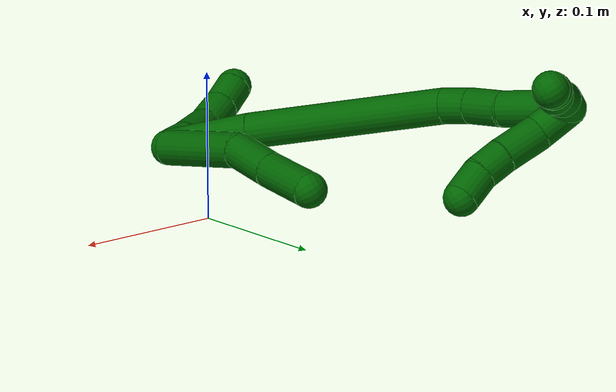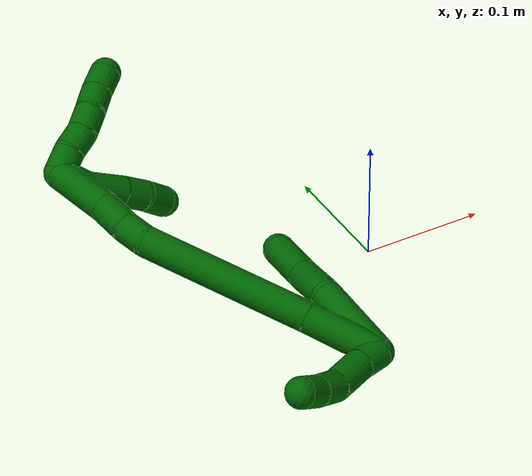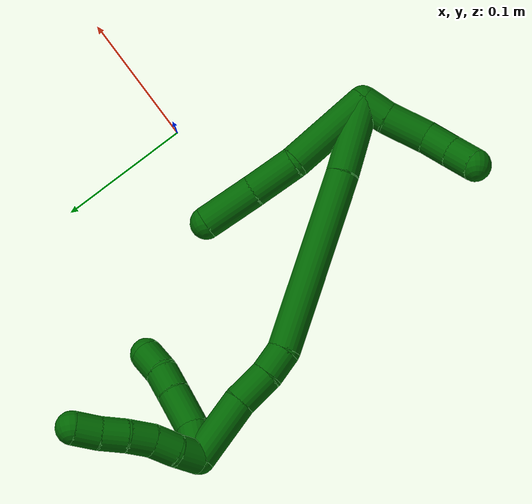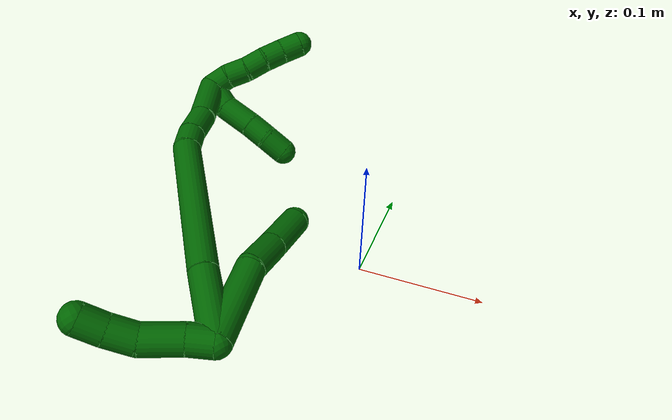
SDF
<sdf version="1.7">
 <world name="default">
  <model name="6">
   <static>0</static>
   <link name="6">
    <collision name="collision-cylinder-e_1_2_8">
     <pose>0.012918 0.02512 0.020527 -0.885689 0.378961 -0.181409</pose>
     <geometry><cylinder><radius>0.0125</radius><length>0.069836</length></cylinder></geometry>
     <surface>
      <friction><ode><mu>1.16</mu><mu2>1.16</mu2><slip1>0</slip1><slip2>0</slip2></ode></friction>
      <contact><ode><kp>1e+06</kp><kd>1</kd><max_vel>0</max_vel><min_depth>0.001</min_depth></ode></contact>
     </surface>
    </collision>
    <visual name="visual-cylinder-e_1_2_8">
     <pose>0.012918 0.02512 0.020527 -0.885689 0.378961 -0.181409</pose>
     <geometry><cylinder><radius>0.0125</radius><length>0.069836</length></cylinder></geometry>
     <material><ambient>0 0.392157 0.003922 1</ambient></material>
    </visual>
    <collision name="collision-cylinder-e_2_8_9">
     <pose>0.030135 0.067139 0.047262 -1.21872 0.234377 -0.163971</pose>
     <geometry><cylinder><radius>0.0125</radius><length>0.037018</length></cylinder></geometry>
     <surface>
      <friction><ode><mu>1.16</mu><mu2>1.16</mu2><slip1>0</slip1><slip2>0</slip2></ode></friction>
      <contact><ode><kp>1e+06</kp><kd>1</kd><max_vel>0</max_vel><min_depth>0.001</min_depth></ode></contact>
     </surface>
    </collision>
    <visual name="visual-cylinder-e_2_8_9">
     <pose>0.030135 0.067139 0.047262 -1.21872 0.234377 -0.163971</pose>
     <geometry><cylinder><radius>0.0125</radius><length>0.037018</length></cylinder></geometry>
     <material><ambient>0 0.392157 0.003922 1</ambient></material>
    </visual>
    <collision name="collision-cylinder-e_3_9_6">
     <pose>0.040599 0.103178 0.061283 -1.18325 0.289844 -0.195501</pose>
     <geometry><cylinder><radius>0.0125</radius><length>0.043146</length></cylinder></geometry>
     <surface>
      <friction><ode><mu>1.16</mu><mu2>1.16</mu2><slip1>0</slip1><slip2>0</slip2></ode></friction>
      <contact><ode><kp>1e+06</kp><kd>1</kd><max_vel>0</max_vel><min_depth>0.001</min_depth></ode></contact>
     </surface>
    </collision>
    <visual name="visual-cylinder-e_3_9_6">
     <pose>0.040599 0.103178 0.061283 -1.18325 0.289844 -0.195501</pose>
     <geometry><cylinder><radius>0.0125</radius><length>0.043146</length></cylinder></geometry>
     <material><ambient>0 0.392157 0.003922 1</ambient></material>
    </visual>
    <collision name="collision-cylinder-e_1_2_10">
     <pose>-0.007254 -0.00468 0.006209 0.645883 -0.750718 -0.262224</pose>
     <geometry><cylinder><radius>0.0125</radius><length>0.021268</length></cylinder></geometry>
     <surface>
      <friction><ode><mu>1.16</mu><mu2>1.16</mu2><slip1>0</slip1><slip2>0</slip2></ode></friction>
      <contact><ode><kp>1e+06</kp><kd>1</kd><max_vel>0</max_vel><min_depth>0.001</min_depth></ode></contact>
     </surface>
    </collision>
    <visual name="visual-cylinder-e_1_2_10">
     <pose>-0.007254 -0.00468 0.006209 0.645883 -0.750718 -0.262224</pose>
     <geometry><cylinder><radius>0.0125</radius><length>0.021268</length></cylinder></geometry>
     <material><ambient>0 0.392157 0.003922 1</ambient></material>
    </visual>
    <collision name="collision-cylinder-e_2_10_11">
     <pose>-0.026204 -0.018451 0.020609 0.837483 -0.762829 -0.353269</pose>
     <geometry><cylinder><radius>0.0125</radius><length>0.033853</length></cylinder></geometry>
     <surface>
      <friction><ode><mu>1.16</mu><mu2>1.16</mu2><slip1>0</slip1><slip2>0</slip2></ode></friction>
      <contact><ode><kp>1e+06</kp><kd>1</kd><max_vel>0</max_vel><min_depth>0.001</min_depth></ode></contact>
     </surface>
    </collision>
    <visual name="visual-cylinder-e_2_10_11">
     <pose>-0.026204 -0.018451 0.020609 0.837483 -0.762829 -0.353269</pose>
     <geometry><cylinder><radius>0.0125</radius><length>0.033853</length></cylinder></geometry>
     <material><ambient>0 0.392157 0.003922 1</ambient></material>
    </visual>
    <collision name="collision-cylinder-e_3_11_12">
     <pose>-0.042847 -0.034619 0.036751 0.727221 -0.43504 -0.167812</pose>
     <geometry><cylinder><radius>0.0125</radius><length>0.023478</length></cylinder></geometry>
     <surface>
      <friction><ode><mu>1.16</mu><mu2>1.16</mu2><slip1>0</slip1><slip2>0</slip2></ode></friction>
      <contact><ode><kp>1e+06</kp><kd>1</kd><max_vel>0</max_vel><min_depth>0.001</min_depth></ode></contact>
     </surface>
    </collision>
    <visual name="visual-cylinder-e_3_11_12">
     <pose>-0.042847 -0.034619 0.036751 0.727221 -0.43504 -0.167812</pose>
     <geometry><cylinder><radius>0.0125</radius><length>0.023478</length></cylinder></geometry>
     <material><ambient>0 0.392157 0.003922 1</ambient></material>
    </visual>
    <collision name="collision-cylinder-e_4_12_5">
     <pose>-0.05108 -0.048532 0.052252 0.735907 -0.31212 -0.121164</pose>
     <geometry><cylinder><radius>0.0125</radius><length>0.021401</length></cylinder></geometry>
     <surface>
      <friction><ode><mu>1.16</mu><mu2>1.16</mu2><slip1>0</slip1><slip2>0</slip2></ode></friction>
      <contact><ode><kp>1e+06</kp><kd>1</kd><max_vel>0</max_vel><min_depth>0.001</min_depth></ode></contact>
     </surface>
    </collision>
    <visual name="visual-cylinder-e_4_12_5">
     <pose>-0.05108 -0.048532 0.052252 0.735907 -0.31212 -0.121164</pose>
     <geometry><cylinder><radius>0.0125</radius><length>0.021401</length></cylinder></geometry>
     <material><ambient>0 0.392157 0.003922 1</ambient></material>
    </visual>
    <collision name="collision-cylinder-e_1_2_13">
     <pose>0.001254 0.012436 0.027146 -0.429575 0.041956 -0.009154</pose>
     <geometry><cylinder><radius>0.0125</radius><length>0.059771</length></cylinder></geometry>
     <surface>
      <friction><ode><mu>1.16</mu><mu2>1.16</mu2><slip1>0</slip1><slip2>0</slip2></ode></friction>
      <contact><ode><kp>1e+06</kp><kd>1</kd><max_vel>0</max_vel><min_depth>0.001</min_depth></ode></contact>
     </surface>
    </collision>
    <visual name="visual-cylinder-e_1_2_13">
     <pose>0.001254 0.012436 0.027146 -0.429575 0.041956 -0.009154</pose>
     <geometry><cylinder><radius>0.0125</radius><length>0.059771</length></cylinder></geometry>
     <material><ambient>0 0.392157 0.003922 1</ambient></material>
    </visual>
    <collision name="collision-cylinder-e_2_13_14">
     <pose>0.004304 0.058716 0.115683 -0.503833 0.025633 -0.006598</pose>
     <geometry><cylinder><radius>0.0125</radius><length>0.140249</length></cylinder></geometry>
     <surface>
      <friction><ode><mu>1.16</mu><mu2>1.16</mu2><slip1>0</slip1><slip2>0</slip2></ode></friction>
      <contact><ode><kp>1e+06</kp><kd>1</kd><max_vel>0</max_vel><min_depth>0.001</min_depth></ode></contact>
     </surface>
    </collision>
    <visual name="visual-cylinder-e_2_13_14">
     <pose>0.004304 0.058716 0.115683 -0.503833 0.025633 -0.006598</pose>
     <geometry><cylinder><radius>0.0125</radius><length>0.140249</length></cylinder></geometry>
     <material><ambient>0 0.392157 0.003922 1</ambient></material>
    </visual>
    <collision name="collision-cylinder-e_3_14_15">
     <pose>0.008265 0.09964 0.184781 -0.743013 0.203877 -0.079664</pose>
     <geometry><cylinder><radius>0.0125</radius><length>0.021373</length></cylinder></geometry>
     <surface>
      <friction><ode><mu>1.16</mu><mu2>1.16</mu2><slip1>0</slip1><slip2>0</slip2></ode></friction>
      <contact><ode><kp>1e+06</kp><kd>1</kd><max_vel>0</max_vel><min_depth>0.001</min_depth></ode></contact>
     </surface>
    </collision>
    <visual name="visual-cylinder-e_3_14_15">
     <pose>0.008265 0.09964 0.184781 -0.743013 0.203877 -0.079664</pose>
     <geometry><cylinder><radius>0.0125</radius><length>0.021373</length></cylinder></geometry>
     <material><ambient>0 0.392157 0.003922 1</ambient></material>
    </visual>
    <collision name="collision-cylinder-e_4_15_16">
     <pose>0.014538 0.117305 0.200931 -0.89752 0.29465 -0.142675</pose>
     <geometry><cylinder><radius>0.0125</radius><length>0.028301</length></cylinder></geometry>
     <surface>
      <friction><ode><mu>1.16</mu><mu2>1.16</mu2><slip1>0</slip1><slip2>0</slip2></ode></friction>
      <contact><ode><kp>1e+06</kp><kd>1</kd><max_vel>0</max_vel><min_depth>0.001</min_depth></ode></contact>
     </surface>
    </collision>
    <visual name="visual-cylinder-e_4_15_16">
     <pose>0.014538 0.117305 0.200931 -0.89752 0.29465 -0.142675</pose>
     <geometry><cylinder><radius>0.0125</radius><length>0.028301</length></cylinder></geometry>
     <material><ambient>0 0.392157 0.003922 1</ambient></material>
    </visual>
    <collision name="collision-cylinder-e_5_16_1">
     <pose>0.024079 0.144504 0.227462 -0.742928 0.217643 -0.085068</pose>
     <geometry><cylinder><radius>0.0125</radius><length>0.050306</length></cylinder></geometry>
     <surface>
      <friction><ode><mu>1.16</mu><mu2>1.16</mu2><slip1>0</slip1><slip2>0</slip2></ode></friction>
      <contact><ode><kp>1e+06</kp><kd>1</kd><max_vel>0</max_vel><min_depth>0.001</min_depth></ode></contact>
     </surface>
    </collision>
    <visual name="visual-cylinder-e_5_16_1">
     <pose>0.024079 0.144504 0.227462 -0.742928 0.217643 -0.085068</pose>
     <geometry><cylinder><radius>0.0125</radius><length>0.050306</length></cylinder></geometry>
     <material><ambient>0 0.392157 0.003922 1</ambient></material>
    </visual>
    <collision name="collision-cylinder-e_1_1_17">
     <pose>0.029365 0.163138 0.232689 -2.9858 -0.011122 0.142259</pose>
     <geometry><cylinder><radius>0.0125</radius><length>0.026038</length></cylinder></geometry>
     <surface>
      <friction><ode><mu>1.16</mu><mu2>1.16</mu2><slip1>0</slip1><slip2>0</slip2></ode></friction>
      <contact><ode><kp>1e+06</kp><kd>1</kd><max_vel>0</max_vel><min_depth>0.001</min_depth></ode></contact>
     </surface>
    </collision>
    <visual name="visual-cylinder-e_1_1_17">
     <pose>0.029365 0.163138 0.232689 -2.9858 -0.011122 0.142259</pose>
     <geometry><cylinder><radius>0.0125</radius><length>0.026038</length></cylinder></geometry>
     <material><ambient>0 0.392157 0.003922 1</ambient></material>
    </visual>
    <collision name="collision-cylinder-e_2_17_18">
     <pose>0.033992 0.169021 0.205239 -2.88274 0.306216 -1.74028</pose>
     <geometry><cylinder><radius>0.0125</radius><length>0.031658</length></cylinder></geometry>
     <surface>
      <friction><ode><mu>1.16</mu><mu2>1.16</mu2><slip1>0</slip1><slip2>0</slip2></ode></friction>
      <contact><ode><kp>1e+06</kp><kd>1</kd><max_vel>0</max_vel><min_depth>0.001</min_depth></ode></contact>
     </surface>
    </collision>
    <visual name="visual-cylinder-e_2_17_18">
     <pose>0.033992 0.169021 0.205239 -2.88274 0.306216 -1.74028</pose>
     <geometry><cylinder><radius>0.0125</radius><length>0.031658</length></cylinder></geometry>
     <material><ambient>0 0.392157 0.003922 1</ambient></material>
    </visual>
    <collision name="collision-cylinder-e_3_18_19">
     <pose>0.041091 0.175848 0.181281 -2.83512 0.232591 -1.29515</pose>
     <geometry><cylinder><radius>0.0125</radius><length>0.020195</length></cylinder></geometry>
     <surface>
      <friction><ode><mu>1.16</mu><mu2>1.16</mu2><slip1>0</slip1><slip2>0</slip2></ode></friction>
      <contact><ode><kp>1e+06</kp><kd>1</kd><max_vel>0</max_vel><min_depth>0.001</min_depth></ode></contact>
     </surface>
    </collision>
    <visual name="visual-cylinder-e_3_18_19">
     <pose>0.041091 0.175848 0.181281 -2.83512 0.232591 -1.29515</pose>
     <geometry><cylinder><radius>0.0125</radius><length>0.020195</length></cylinder></geometry>
     <material><ambient>0 0.392157 0.003922 1</ambient></material>
    </visual>
    <collision name="collision-cylinder-e_4_19_4">
     <pose>0.045015 0.184347 0.162479 -2.61111 0.144887 -0.522112</pose>
     <geometry><cylinder><radius>0.0125</radius><length>0.022109</length></cylinder></geometry>
     <surface>
      <friction><ode><mu>1.16</mu><mu2>1.16</mu2><slip1>0</slip1><slip2>0</slip2></ode></friction>
      <contact><ode><kp>1e+06</kp><kd>1</kd><max_vel>0</max_vel><min_depth>0.001</min_depth></ode></contact>
     </surface>
    </collision>
    <visual name="visual-cylinder-e_4_19_4">
     <pose>0.045015 0.184347 0.162479 -2.61111 0.144887 -0.522112</pose>
     <geometry><cylinder><radius>0.0125</radius><length>0.022109</length></cylinder></geometry>
     <material><ambient>0 0.392157 0.003922 1</ambient></material>
    </visual>
    <collision name="collision-cylinder-e_1_1_20">
     <pose>0.03925 0.16334 0.245098 -1.77139 1.34199 -1.54192</pose>
     <geometry><cylinder><radius>0.0125</radius><length>0.02</length></cylinder></geometry>
     <surface>
      <friction><ode><mu>1.16</mu><mu2>1.16</mu2><slip1>0</slip1><slip2>0</slip2></ode></friction>
      <contact><ode><kp>1e+06</kp><kd>1</kd><max_vel>0</max_vel><min_depth>0.001</min_depth></ode></contact>
     </surface>
    </collision>
    <visual name="visual-cylinder-e_1_1_20">
     <pose>0.03925 0.16334 0.245098 -1.77139 1.34199 -1.54192</pose>
     <geometry><cylinder><radius>0.0125</radius><length>0.02</length></cylinder></geometry>
     <material><ambient>0 0.392157 0.003922 1</ambient></material>
    </visual>
    <collision name="collision-cylinder-e_2_20_21">
     <pose>0.058113 0.168966 0.242372 -2.1599 1.14914 -1.76136</pose>
     <geometry><cylinder><radius>0.0125</radius><length>0.02</length></cylinder></geometry>
     <surface>
      <friction><ode><mu>1.16</mu><mu2>1.16</mu2><slip1>0</slip1><slip2>0</slip2></ode></friction>
      <contact><ode><kp>1e+06</kp><kd>1</kd><max_vel>0</max_vel><min_depth>0.001</min_depth></ode></contact>
     </surface>
    </collision>
    <visual name="visual-cylinder-e_2_20_21">
     <pose>0.058113 0.168966 0.242372 -2.1599 1.14914 -1.76136</pose>
     <geometry><cylinder><radius>0.0125</radius><length>0.02</length></cylinder></geometry>
     <material><ambient>0 0.392157 0.003922 1</ambient></material>
    </visual>
    <collision name="collision-cylinder-e_3_21_22">
     <pose>0.076397 0.17637 0.239812 -1.64213 1.15807 -1.22437</pose>
     <geometry><cylinder><radius>0.0125</radius><length>0.02</length></cylinder></geometry>
     <surface>
      <friction><ode><mu>1.16</mu><mu2>1.16</mu2><slip1>0</slip1><slip2>0</slip2></ode></friction>
      <contact><ode><kp>1e+06</kp><kd>1</kd><max_vel>0</max_vel><min_depth>0.001</min_depth></ode></contact>
     </surface>
    </collision>
    <visual name="visual-cylinder-e_3_21_22">
     <pose>0.076397 0.17637 0.239812 -1.64213 1.15807 -1.22437</pose>
     <geometry><cylinder><radius>0.0125</radius><length>0.02</length></cylinder></geometry>
     <material><ambient>0 0.392157 0.003922 1</ambient></material>
    </visual>
    <collision name="collision-cylinder-e_4_22_23">
     <pose>0.093924 0.185837 0.239189 -1.6325 0.991163 -1.04368</pose>
     <geometry><cylinder><radius>0.0125</radius><length>0.02</length></cylinder></geometry>
     <surface>
      <friction><ode><mu>1.16</mu><mu2>1.16</mu2><slip1>0</slip1><slip2>0</slip2></ode></friction>
      <contact><ode><kp>1e+06</kp><kd>1</kd><max_vel>0</max_vel><min_depth>0.001</min_depth></ode></contact>
     </surface>
    </collision>
    <visual name="visual-cylinder-e_4_22_23">
     <pose>0.093924 0.185837 0.239189 -1.6325 0.991163 -1.04368</pose>
     <geometry><cylinder><radius>0.0125</radius><length>0.02</length></cylinder></geometry>
     <material><ambient>0 0.392157 0.003922 1</ambient></material>
    </visual>
    <collision name="collision-cylinder-e_5_23_3">
     <pose>0.110995 0.196105 0.237758 -1.79465 1.05597 -1.26236</pose>
     <geometry><cylinder><radius>0.0125</radius><length>0.02</length></cylinder></geometry>
     <surface>
      <friction><ode><mu>1.16</mu><mu2>1.16</mu2><slip1>0</slip1><slip2>0</slip2></ode></friction>
      <contact><ode><kp>1e+06</kp><kd>1</kd><max_vel>0</max_vel><min_depth>0.001</min_depth></ode></contact>
     </surface>
    </collision>
    <visual name="visual-cylinder-e_5_23_3">
     <pose>0.110995 0.196105 0.237758 -1.79465 1.05597 -1.26236</pose>
     <geometry><cylinder><radius>0.0125</radius><length>0.02</length></cylinder></geometry>
     <material><ambient>0 0.392157 0.003922 1</ambient></material>
    </visual>
    <collision name="collision-sphere-3">
     <pose>0.119699 0.200906 0.236665 0 -0 0</pose>
     <geometry><sphere><radius>0.0125</radius></sphere></geometry>
     <surface>
      <friction><ode><mu>1.16</mu><mu2>1.16</mu2><slip1>0</slip1><slip2>0</slip2></ode></friction>
      <contact><ode><kp>1e+06</kp><kd>1</kd><max_vel>0</max_vel><min_depth>0.001</min_depth></ode></contact>
     </surface>
    </collision>
    <visual name="visual-sphere-3">
     <pose>0.119699 0.200906 0.236665 0 -0 0</pose>
     <geometry><sphere><radius>0.0125</radius></sphere></geometry>
     <material><ambient>0 0.392157 0.003922 1</ambient></material>
    </visual>
    <collision name="collision-sphere-23">
     <pose>0.102291 0.191304 0.238851 0 -0 0</pose>
     <geometry><sphere><radius>0.0125</radius></sphere></geometry>
     <surface>
      <friction><ode><mu>1.16</mu><mu2>1.16</mu2><slip1>0</slip1><slip2>0</slip2></ode></friction>
      <contact><ode><kp>1e+06</kp><kd>1</kd><max_vel>0</max_vel><min_depth>0.001</min_depth></ode></contact>
     </surface>
    </collision>
    <visual name="visual-sphere-23">
     <pose>0.102291 0.191304 0.238851 0 -0 0</pose>
     <geometry><sphere><radius>0.0125</radius></sphere></geometry>
     <material><ambient>0 0.392157 0.003922 1</ambient></material>
    </visual>
    <collision name="collision-sphere-22">
     <pose>0.085558 0.18037 0.239526 0 -0 0</pose>
     <geometry><sphere><radius>0.0125</radius></sphere></geometry>
     <surface>
      <friction><ode><mu>1.16</mu><mu2>1.16</mu2><slip1>0</slip1><slip2>0</slip2></ode></friction>
      <contact><ode><kp>1e+06</kp><kd>1</kd><max_vel>0</max_vel><min_depth>0.001</min_depth></ode></contact>
     </surface>
    </collision>
    <visual name="visual-sphere-22">
     <pose>0.085558 0.18037 0.239526 0 -0 0</pose>
     <geometry><sphere><radius>0.0125</radius></sphere></geometry>
     <material><ambient>0 0.392157 0.003922 1</ambient></material>
    </visual>
    <collision name="collision-sphere-21">
     <pose>0.067237 0.172369 0.240098 0 -0 0</pose>
     <geometry><sphere><radius>0.0125</radius></sphere></geometry>
     <surface>
      <friction><ode><mu>1.16</mu><mu2>1.16</mu2><slip1>0</slip1><slip2>0</slip2></ode></friction>
      <contact><ode><kp>1e+06</kp><kd>1</kd><max_vel>0</max_vel><min_depth>0.001</min_depth></ode></contact>
     </surface>
    </collision>
    <visual name="visual-sphere-21">
     <pose>0.067237 0.172369 0.240098 0 -0 0</pose>
     <geometry><sphere><radius>0.0125</radius></sphere></geometry>
     <material><ambient>0 0.392157 0.003922 1</ambient></material>
    </visual>
    <collision name="collision-sphere-20">
     <pose>0.048989 0.165563 0.244646 0 -0 0</pose>
     <geometry><sphere><radius>0.0125</radius></sphere></geometry>
     <surface>
      <friction><ode><mu>1.16</mu><mu2>1.16</mu2><slip1>0</slip1><slip2>0</slip2></ode></friction>
      <contact><ode><kp>1e+06</kp><kd>1</kd><max_vel>0</max_vel><min_depth>0.001</min_depth></ode></contact>
     </surface>
    </collision>
    <visual name="visual-sphere-20">
     <pose>0.048989 0.165563 0.244646 0 -0 0</pose>
     <geometry><sphere><radius>0.0125</radius></sphere></geometry>
     <material><ambient>0 0.392157 0.003922 1</ambient></material>
    </visual>
    <collision name="collision-sphere-4">
     <pose>0.046611 0.189882 0.153043 0 -0 0</pose>
     <geometry><sphere><radius>0.0125</radius></sphere></geometry>
     <surface>
      <friction><ode><mu>1.16</mu><mu2>1.16</mu2><slip1>0</slip1><slip2>0</slip2></ode></friction>
      <contact><ode><kp>1e+06</kp><kd>1</kd><max_vel>0</max_vel><min_depth>0.001</min_depth></ode></contact>
     </surface>
    </collision>
    <visual name="visual-sphere-4">
     <pose>0.046611 0.189882 0.153043 0 -0 0</pose>
     <geometry><sphere><radius>0.0125</radius></sphere></geometry>
     <material><ambient>0 0.392157 0.003922 1</ambient></material>
    </visual>
    <collision name="collision-sphere-11">
     <pose>-0.0379 -0.027542 0.028798 0 -0 0</pose>
     <geometry><sphere><radius>0.0125</radius></sphere></geometry>
     <surface>
      <friction><ode><mu>1.16</mu><mu2>1.16</mu2><slip1>0</slip1><slip2>0</slip2></ode></friction>
      <contact><ode><kp>1e+06</kp><kd>1</kd><max_vel>0</max_vel><min_depth>0.001</min_depth></ode></contact>
     </surface>
    </collision>
    <visual name="visual-sphere-11">
     <pose>-0.0379 -0.027542 0.028798 0 -0 0</pose>
     <geometry><sphere><radius>0.0125</radius></sphere></geometry>
     <material><ambient>0 0.392157 0.003922 1</ambient></material>
    </visual>
    <collision name="collision-sphere-10">
     <pose>-0.014508 -0.00936 0.012419 0 -0 0</pose>
     <geometry><sphere><radius>0.0125</radius></sphere></geometry>
     <surface>
      <friction><ode><mu>1.16</mu><mu2>1.16</mu2><slip1>0</slip1><slip2>0</slip2></ode></friction>
      <contact><ode><kp>1e+06</kp><kd>1</kd><max_vel>0</max_vel><min_depth>0.001</min_depth></ode></contact>
     </surface>
    </collision>
    <visual name="visual-sphere-10">
     <pose>-0.014508 -0.00936 0.012419 0 -0 0</pose>
     <geometry><sphere><radius>0.0125</radius></sphere></geometry>
     <material><ambient>0 0.392157 0.003922 1</ambient></material>
    </visual>
    <collision name="collision-sphere-6">
     <pose>0.046764 0.122318 0.069096 0 -0 0</pose>
     <geometry><sphere><radius>0.0125</radius></sphere></geometry>
     <surface>
      <friction><ode><mu>1.16</mu><mu2>1.16</mu2><slip1>0</slip1><slip2>0</slip2></ode></friction>
      <contact><ode><kp>1e+06</kp><kd>1</kd><max_vel>0</max_vel><min_depth>0.001</min_depth></ode></contact>
     </surface>
    </collision>
    <visual name="visual-sphere-6">
     <pose>0.046764 0.122318 0.069096 0 -0 0</pose>
     <geometry><sphere><radius>0.0125</radius></sphere></geometry>
     <material><ambient>0 0.392157 0.003922 1</ambient></material>
    </visual>
    <collision name="collision-sphere-9">
     <pose>0.034433 0.084038 0.053471 0 -0 0</pose>
     <geometry><sphere><radius>0.0125</radius></sphere></geometry>
     <surface>
      <friction><ode><mu>1.16</mu><mu2>1.16</mu2><slip1>0</slip1><slip2>0</slip2></ode></friction>
      <contact><ode><kp>1e+06</kp><kd>1</kd><max_vel>0</max_vel><min_depth>0.001</min_depth></ode></contact>
     </surface>
    </collision>
    <visual name="visual-sphere-9">
     <pose>0.034433 0.084038 0.053471 0 -0 0</pose>
     <geometry><sphere><radius>0.0125</radius></sphere></geometry>
     <material><ambient>0 0.392157 0.003922 1</ambient></material>
    </visual>
    <collision name="collision-sphere-2">
     <geometry><sphere><radius>0.0125</radius></sphere></geometry>
     <surface>
      <friction><ode><mu>1.16</mu><mu2>1.16</mu2><slip1>0</slip1><slip2>0</slip2></ode></friction>
      <contact><ode><kp>1e+06</kp><kd>1</kd><max_vel>0</max_vel><min_depth>0.001</min_depth></ode></contact>
     </surface>
    </collision>
    <visual name="visual-sphere-2">
     <geometry><sphere><radius>0.0125</radius></sphere></geometry>
     <material><ambient>0 0.392157 0.003922 1</ambient></material>
    </visual>
    <collision name="collision-sphere-19">
     <pose>0.043419 0.178813 0.171914 0 -0 0</pose>
     <geometry><sphere><radius>0.0125</radius></sphere></geometry>
     <surface>
      <friction><ode><mu>1.16</mu><mu2>1.16</mu2><slip1>0</slip1><slip2>0</slip2></ode></friction>
      <contact><ode><kp>1e+06</kp><kd>1</kd><max_vel>0</max_vel><min_depth>0.001</min_depth></ode></contact>
     </surface>
    </collision>
    <visual name="visual-sphere-19">
     <pose>0.043419 0.178813 0.171914 0 -0 0</pose>
     <geometry><sphere><radius>0.0125</radius></sphere></geometry>
     <material><ambient>0 0.392157 0.003922 1</ambient></material>
    </visual>
    <collision name="collision-sphere-8">
     <pose>0.025836 0.050241 0.041054 0 -0 0</pose>
     <geometry><sphere><radius>0.0125</radius></sphere></geometry>
     <surface>
      <friction><ode><mu>1.16</mu><mu2>1.16</mu2><slip1>0</slip1><slip2>0</slip2></ode></friction>
      <contact><ode><kp>1e+06</kp><kd>1</kd><max_vel>0</max_vel><min_depth>0.001</min_depth></ode></contact>
     </surface>
    </collision>
    <visual name="visual-sphere-8">
     <pose>0.025836 0.050241 0.041054 0 -0 0</pose>
     <geometry><sphere><radius>0.0125</radius></sphere></geometry>
     <material><ambient>0 0.392157 0.003922 1</ambient></material>
    </visual>
    <collision name="collision-sphere-12">
     <pose>-0.047794 -0.041696 0.044704 0 -0 0</pose>
     <geometry><sphere><radius>0.0125</radius></sphere></geometry>
     <surface>
      <friction><ode><mu>1.16</mu><mu2>1.16</mu2><slip1>0</slip1><slip2>0</slip2></ode></friction>
      <contact><ode><kp>1e+06</kp><kd>1</kd><max_vel>0</max_vel><min_depth>0.001</min_depth></ode></contact>
     </surface>
    </collision>
    <visual name="visual-sphere-12">
     <pose>-0.047794 -0.041696 0.044704 0 -0 0</pose>
     <geometry><sphere><radius>0.0125</radius></sphere></geometry>
     <material><ambient>0 0.392157 0.003922 1</ambient></material>
    </visual>
    <collision name="collision-sphere-5">
     <pose>-0.054366 -0.055368 0.0598 0 -0 0</pose>
     <geometry><sphere><radius>0.0125</radius></sphere></geometry>
     <surface>
      <friction><ode><mu>1.16</mu><mu2>1.16</mu2><slip1>0</slip1><slip2>0</slip2></ode></friction>
      <contact><ode><kp>1e+06</kp><kd>1</kd><max_vel>0</max_vel><min_depth>0.001</min_depth></ode></contact>
     </surface>
    </collision>
    <visual name="visual-sphere-5">
     <pose>-0.054366 -0.055368 0.0598 0 -0 0</pose>
     <geometry><sphere><radius>0.0125</radius></sphere></geometry>
     <material><ambient>0 0.392157 0.003922 1</ambient></material>
    </visual>
    <collision name="collision-sphere-13">
     <pose>0.002507 0.024872 0.054293 0 -0 0</pose>
     <geometry><sphere><radius>0.0125</radius></sphere></geometry>
     <surface>
      <friction><ode><mu>1.16</mu><mu2>1.16</mu2><slip1>0</slip1><slip2>0</slip2></ode></friction>
      <contact><ode><kp>1e+06</kp><kd>1</kd><max_vel>0</max_vel><min_depth>0.001</min_depth></ode></contact>
     </surface>
    </collision>
    <visual name="visual-sphere-13">
     <pose>0.002507 0.024872 0.054293 0 -0 0</pose>
     <geometry><sphere><radius>0.0125</radius></sphere></geometry>
     <material><ambient>0 0.392157 0.003922 1</ambient></material>
    </visual>
    <collision name="collision-sphere-14">
     <pose>0.006102 0.09256 0.177074 0 -0 0</pose>
     <geometry><sphere><radius>0.0125</radius></sphere></geometry>
     <surface>
      <friction><ode><mu>1.16</mu><mu2>1.16</mu2><slip1>0</slip1><slip2>0</slip2></ode></friction>
      <contact><ode><kp>1e+06</kp><kd>1</kd><max_vel>0</max_vel><min_depth>0.001</min_depth></ode></contact>
     </surface>
    </collision>
    <visual name="visual-sphere-14">
     <pose>0.006102 0.09256 0.177074 0 -0 0</pose>
     <geometry><sphere><radius>0.0125</radius></sphere></geometry>
     <material><ambient>0 0.392157 0.003922 1</ambient></material>
    </visual>
    <collision name="collision-sphere-15">
     <pose>0.010429 0.106719 0.192488 0 -0 0</pose>
     <geometry><sphere><radius>0.0125</radius></sphere></geometry>
     <surface>
      <friction><ode><mu>1.16</mu><mu2>1.16</mu2><slip1>0</slip1><slip2>0</slip2></ode></friction>
      <contact><ode><kp>1e+06</kp><kd>1</kd><max_vel>0</max_vel><min_depth>0.001</min_depth></ode></contact>
     </surface>
    </collision>
    <visual name="visual-sphere-15">
     <pose>0.010429 0.106719 0.192488 0 -0 0</pose>
     <geometry><sphere><radius>0.0125</radius></sphere></geometry>
     <material><ambient>0 0.392157 0.003922 1</ambient></material>
    </visual>
    <collision name="collision-sphere-16">
     <pose>0.018648 0.127891 0.209374 0 -0 0</pose>
     <geometry><sphere><radius>0.0125</radius></sphere></geometry>
     <surface>
      <friction><ode><mu>1.16</mu><mu2>1.16</mu2><slip1>0</slip1><slip2>0</slip2></ode></friction>
      <contact><ode><kp>1e+06</kp><kd>1</kd><max_vel>0</max_vel><min_depth>0.001</min_depth></ode></contact>
     </surface>
    </collision>
    <visual name="visual-sphere-16">
     <pose>0.018648 0.127891 0.209374 0 -0 0</pose>
     <geometry><sphere><radius>0.0125</radius></sphere></geometry>
     <material><ambient>0 0.392157 0.003922 1</ambient></material>
    </visual>
    <collision name="collision-sphere-1">
     <pose>0.02951 0.161118 0.24555 0 -0 0</pose>
     <geometry><sphere><radius>0.0125</radius></sphere></geometry>
     <surface>
      <friction><ode><mu>1.16</mu><mu2>1.16</mu2><slip1>0</slip1><slip2>0</slip2></ode></friction>
      <contact><ode><kp>1e+06</kp><kd>1</kd><max_vel>0</max_vel><min_depth>0.001</min_depth></ode></contact>
     </surface>
    </collision>
    <visual name="visual-sphere-1">
     <pose>0.02951 0.161118 0.24555 0 -0 0</pose>
     <geometry><sphere><radius>0.0125</radius></sphere></geometry>
     <material><ambient>0 0.392157 0.003922 1</ambient></material>
    </visual>
    <collision name="collision-sphere-18">
     <pose>0.038764 0.172884 0.190649 0 -0 0</pose>
     <geometry><sphere><radius>0.0125</radius></sphere></geometry>
     <surface>
      <friction><ode><mu>1.16</mu><mu2>1.16</mu2><slip1>0</slip1><slip2>0</slip2></ode></friction>
      <contact><ode><kp>1e+06</kp><kd>1</kd><max_vel>0</max_vel><min_depth>0.001</min_depth></ode></contact>
     </surface>
    </collision>
    <visual name="visual-sphere-18">
     <pose>0.038764 0.172884 0.190649 0 -0 0</pose>
     <geometry><sphere><radius>0.0125</radius></sphere></geometry>
     <material><ambient>0 0.392157 0.003922 1</ambient></material>
    </visual>
    <collision name="collision-sphere-17">
     <pose>0.029221 0.165157 0.219829 0 -0 0</pose>
     <geometry><sphere><radius>0.0125</radius></sphere></geometry>
     <surface>
      <friction><ode><mu>1.16</mu><mu2>1.16</mu2><slip1>0</slip1><slip2>0</slip2></ode></friction>
      <contact><ode><kp>1e+06</kp><kd>1</kd><max_vel>0</max_vel><min_depth>0.001</min_depth></ode></contact>
     </surface>
    </collision>
    <visual name="visual-sphere-17">
     <pose>0.029221 0.165157 0.219829 0 -0 0</pose>
     <geometry><sphere><radius>0.0125</radius></sphere></geometry>
     <material><ambient>0 0.392157 0.003922 1</ambient></material>
    </visual>
    <inertial>
     <pose>0.019128 0.083801 0.121943 0 -0 0</pose>
     <mass>0.75</mass>
     <inertia>
      <ixx>0.000315</ixx>
      <ixy>0</ixy>
      <ixz>0</ixz>
      <iyy>0.000276</iyy>
      <iyz>0</iyz>
      <izz>-0.000176</izz>
     </inertia>
    </inertial>
   </link>
   <pose>-0.0662 -0.124383 0.01247 -0.829295 -0.748052 0.457578</pose>
  </model>
 </world>
</sdf>
